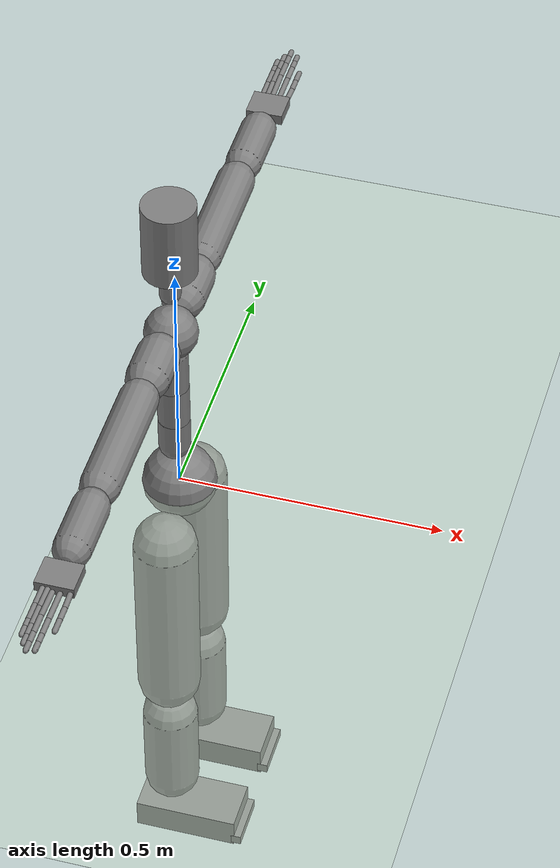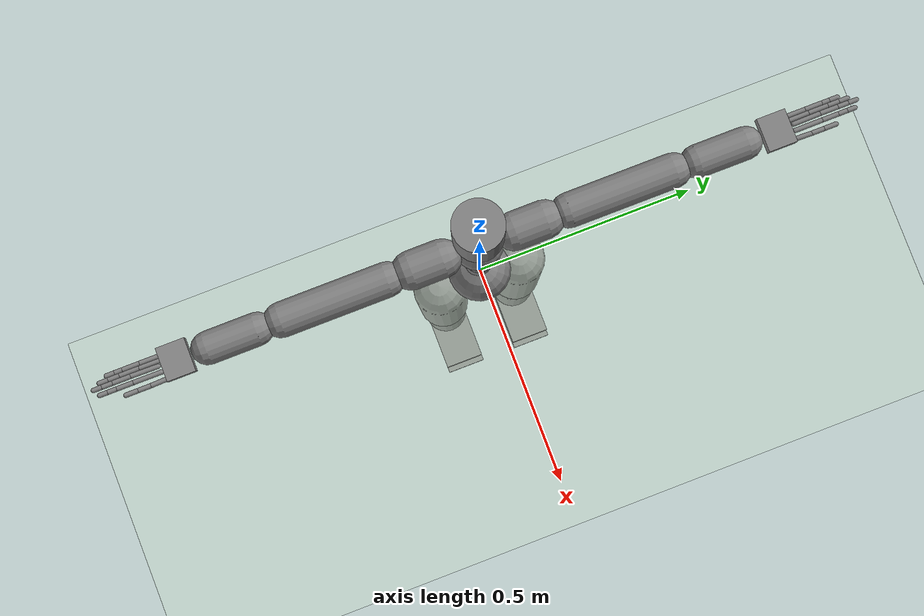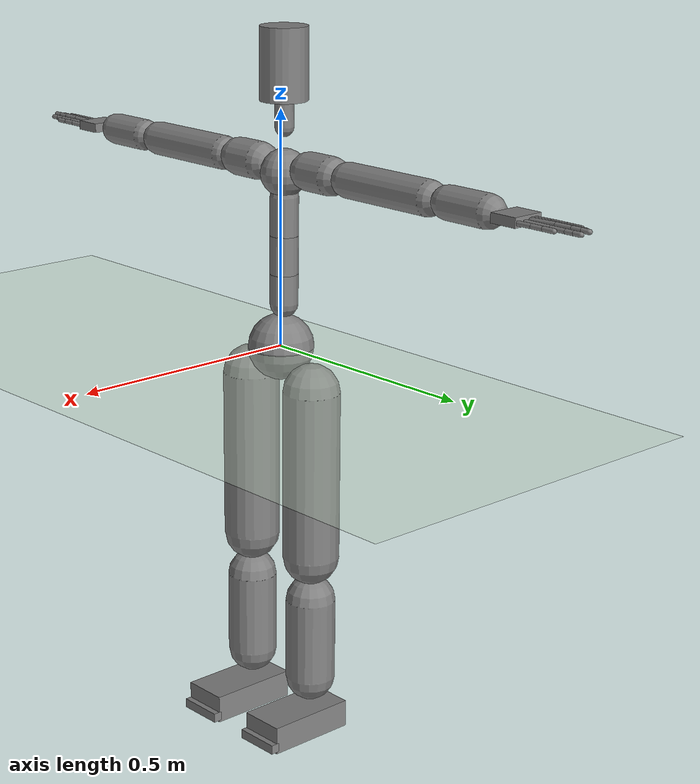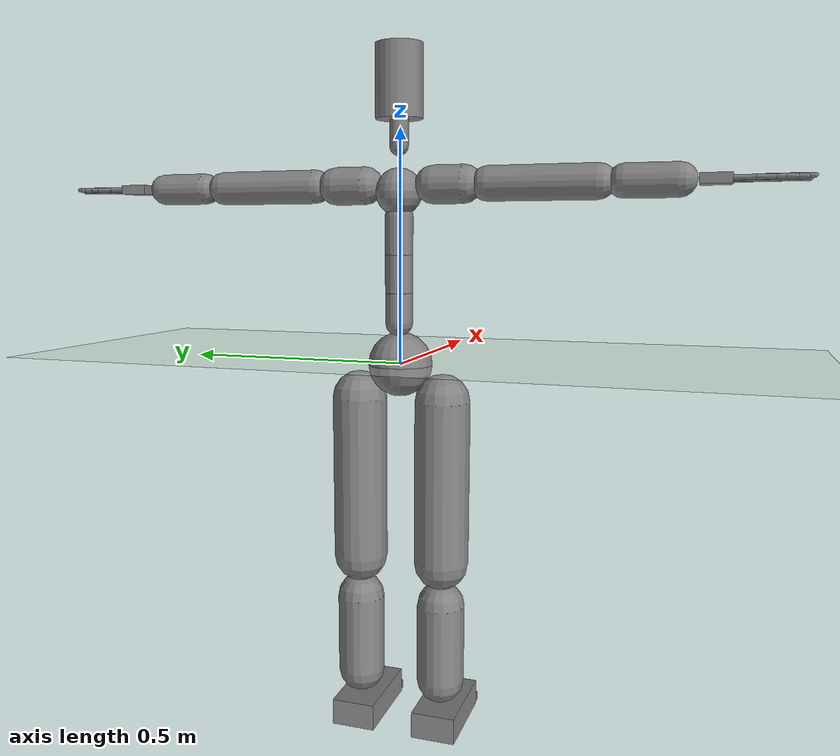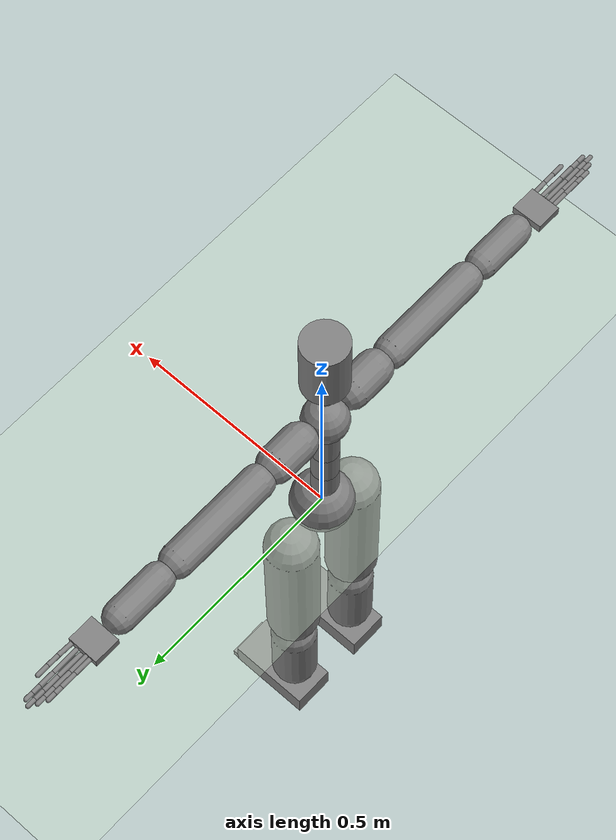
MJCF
<!-- change the damping from 50 to 500 -->
<mujoco model="humanoid">
  <compiler coordinate="local"/>
  <statistic extent="2" center="0 0 1"/>
  <option timestep="0.00555"/>
  <default>
    <motor ctrlrange="-1 1" ctrllimited="true"/>
    <geom type="capsule" condim="1" friction="1.0 0.05 0.05" solimp=".9 .99 .003" solref=".015 1"/>
    <joint type="hinge" damping="0.1" stiffness="5" armature=".007" limited="true" solimplimit="0 .99 .01"/>
    <site size=".04" group="3"/>
    <default class="force-torque">
      <site type="box" size=".01 .01 .02" rgba="1 0 0 1"/>
    </default>
    <default class="touch">
      <site type="capsule" rgba="0 0 1 .3"/>
    </default>
  </default>
  <asset>
    <texture type="skybox" builtin="gradient" rgb1=".4 .5 .6" rgb2="0 0 0" width="100" height="100"/>
    <texture builtin="flat" height="1278" mark="cross" markrgb="1 1 1" name="texgeom" random="0.01" rgb1="0.8 0.6 0.4" rgb2="0.8 0.6 0.4" type="cube" width="127"/>
    <texture builtin="checker" height="100" name="texplane" rgb1="0 0 0" rgb2="0.8 0.8 0.8" type="2d" width="100"/>
    <material name="MatPlane" reflectance="0.5" shininess="1" specular="1" texrepeat="60 60" texture="texplane"/>
    <material name="geom" texture="texgeom" texuniform="true"/>
  </asset>
  <worldbody>
    <light cutoff="100" diffuse="1 1 1" dir="-0 0 -1.3" directional="true" exponent="1" pos="0 0 1.3" specular=".1 .1 .1"/>
    <geom conaffinity="1" condim="3" name="floor" pos="0 0 0" rgba="0.8 0.9 0.8 1" size="100 100 .2" type="plane" material="MatPlane"/>
    <body name="pHipOrigin" pos="0 0 0">
      <freejoint name="pHipOrigin"/>
      <geom type="sphere" contype="1" conaffinity="1" density="4629.6296296296305" size="0.07011" pos="0.0000 0.0000 -0.0000"/>
      <body name="jL5S1" pos="-0.007946679926931962 0.0 0.07151991768832222">
        <geom type="capsule" contype="1" conaffinity="1" density="1000" fromto="0 0 0.02 0.0 0.0 0.08350356668233871" size="0.03"/>
        <joint name="jL5S1_x" type="hinge" pos="0 0 0" axis="1 0 0" stiffness="500" damping="500" armature="0.02" range="-180.0000 180.0000"/>
        <joint name="jL5S1_y" type="hinge" pos="0 0 0" axis="0 1 0" stiffness="500" damping="500" armature="0.02" range="-180.0000 180.0000"/>
        <joint name="jL5S1_z" type="hinge" pos="0 0 0" axis="0 0 1" stiffness="500" damping="500" armature="0.02" range="-180.0000 180.0000"/>
        <body name="jL4L3" pos="0.0 0.0 0.08350356668233871">
          <geom type="capsule" contype="1" conaffinity="1" density="1000" fromto="0 0 0 -0.0006272677302104607 0.0 0.08130501807604487" size="0.03"/>
          <joint name="jL4L3_x" type="hinge" pos="0 0 0" axis="1 0 0" stiffness="500" damping="500" armature="0.02" range="-180.0000 180.0000"/>
          <joint name="jL4L3_y" type="hinge" pos="0 0 0" axis="0 1 0" stiffness="500" damping="500" armature="0.02" range="-180.0000 180.0000"/>
          <joint name="jL4L3_z" type="hinge" pos="0 0 0" axis="0 0 1" stiffness="500" damping="500" armature="0.02" range="-180.0000 180.0000"/>
          <body name="jL1T12" pos="-0.0006272677302104607 0.0 0.08130501807604487">
            <geom type="capsule" contype="1" conaffinity="1" density="1000" fromto="0 0 0 -0.0006276752734201545 0.0 0.08119969634004" size="0.03"/>
            <joint name="jL1T12_x" type="hinge" pos="0 0 0" axis="1 0 0" stiffness="500" damping="500" armature="0.02" range="-180.0000 180.0000"/>
            <joint name="jL1T12_y" type="hinge" pos="0 0 0" axis="0 1 0" stiffness="500" damping="500" armature="0.02" range="-180.0000 180.0000"/>
            <joint name="jL1T12_z" type="hinge" pos="0 0 0" axis="0 0 1" stiffness="500" damping="500" armature="0.02" range="-180.0000 180.0000"/>
            <body name="jT9T8" pos="-0.0006276752734201545 0.0 0.08119969634004">
              <geom type="sphere" contype="1" conaffinity="1" density="1000" size="0.05011" pos="0.0000 0.0000 0.050000"/>
              <joint name="jT9T8_x" type="hinge" pos="0 0 0" axis="1 0 0" stiffness="500" damping="500" armature="0.02" range="-180.0000 180.0000"/>
              <joint name="jT9T8_y" type="hinge" pos="0 0 0" axis="0 1 0" stiffness="500" damping="500" armature="0.02" range="-180.0000 180.0000"/>
              <joint name="jT9T8_z" type="hinge" pos="0 0 0" axis="0 0 1" stiffness="500" damping="500" armature="0.02" range="-180.0000 180.0000"/>
              <body name="jT1C7" pos="0.0 0.0 0.11338400840759277">
                <geom type="capsule" contype="1" conaffinity="1" density="1000" fromto="0 0 0.03 0.0009963847454485726 0.0 0.08445642374205747" size="0.02"/>
                <joint name="jT1C7_x" type="hinge" pos="0 0 0" axis="1 0 0" stiffness="500" damping="500" armature="0.02" range="-180.0000 180.0000"/>
                <joint name="jT1C7_y" type="hinge" pos="0 0 0" axis="0 1 0" stiffness="500" damping="500" armature="0.02" range="-180.0000 180.0000"/>
                <joint name="jT1C7_z" type="hinge" pos="0 0 0" axis="0 0 1" stiffness="500" damping="500" armature="0.02" range="-180.0000 180.0000"/>
                <body name="jC1Head" pos="0.0009963847454485726 0.0 0.08445642374205747">
                  <geom type="cylinder" contype="1" conaffinity="1" density="1000" fromto="0 0 0 0 0 0.15" size="0.05"/>
                  <joint name="jC1Head_x" type="hinge" pos="0 0 0" axis="1 0 0" stiffness="500" damping="500" armature="0.02" range="-180.0000 180.0000"/>
                  <joint name="jC1Head_y" type="hinge" pos="0 0 0" axis="0 1 0" stiffness="500" damping="500" armature="0.02" range="-180.0000 180.0000"/>
                  <joint name="jC1Head_z" type="hinge" pos="0 0 0" axis="0 0 1" stiffness="500" damping="500" armature="0.02" range="-180.0000 180.0000"/>
                </body>
              </body>
              <body name="jRightT4Shoulder" pos="0.0 -0.026105117709178827 0.06365000658535032">
                <geom type="capsule" contype="1" conaffinity="1" density="1000" fromto="0 -0.05 0 0.0 -0.11530210077762604 0.0" size="0.04"/>
                <joint name="jRightT4Shoulder_x" type="hinge" pos="0 0 0" axis="1 0 0" stiffness="500" damping="500" armature="0.02" range="-180.0000 180.0000"/>
                <joint name="jRightT4Shoulder_y" type="hinge" pos="0 0 0" axis="0 1 0" stiffness="500" damping="500" armature="0.02" range="-180.0000 180.0000"/>
                <joint name="jRightT4Shoulder_z" type="hinge" pos="0 0 0" axis="0 0 1" stiffness="500" damping="500" armature="0.02" range="-180.0000 180.0000"/>
                <body name="jRightShoulder" pos="0.0 -0.11530210077762604 0.0">
                  <geom type="capsule" contype="1" conaffinity="1" density="1000" fromto="0 -0.05 0 0.0 -0.27284160256385803 0.0" size="0.036"/>
                  <joint name="jRightShoulder_x" type="hinge" pos="0 0 0" axis="1 0 0" stiffness="500" damping="500" armature="0.02" range="-180.0000 180.0000"/>
                  <joint name="jRightShoulder_y" type="hinge" pos="0 0 0" axis="0 1 0" stiffness="500" damping="500" armature="0.02" range="-180.0000 180.0000"/>
                  <joint name="jRightShoulder_z" type="hinge" pos="0 0 0" axis="0 0 1" stiffness="500" damping="500" armature="0.02" range="-180.0000 180.0000"/>
                  <body name="jRightElbow" pos="0.0 -0.27284160256385803 0.0">
                    <geom type="capsule" contype="1" conaffinity="1" density="1000" fromto="0 -0.05 0 8.829771379146751e-05 -0.1533837697134147 0.0" size="0.034"/>
                    <joint name="jRightElbow_x" type="hinge" pos="0 0 0" axis="1 0 0" stiffness="500" damping="500" armature="0.02" range="-180.0000 180.0000"/>
                    <joint name="jRightElbow_y" type="hinge" pos="0 0 0" axis="0 1 0" stiffness="500" damping="500" armature="0.02" range="-180.0000 180.0000"/>
                    <joint name="jRightElbow_z" type="hinge" pos="0 0 0" axis="0 0 1" stiffness="500" damping="500" armature="0.02" range="-180.0000 180.0000"/>
                    <body name="jRightWrist" pos="8.829771379146751e-05 -0.2193837697134147 0.0">
                      <geom density="1000" type="box" pos="0 0 0" size="0.035 0.03 0.01" quat="1.0 0 0 0"/>
                      <joint name="jRightWrist_x" type="hinge" pos="0 0 0" axis="1 0 0" stiffness="500" damping="500" armature="0.02" range="-180.0000 180.0000"/>
                      <joint name="jRightWrist_y" type="hinge" pos="0 0 0" axis="0 1 0" stiffness="500" damping="500" armature="0.02" range="-180.0000 180.0000"/>
                      <joint name="jRightWrist_z" type="hinge" pos="0 0 0" axis="0 0 1" stiffness="500" damping="500" armature="0.02" range="-180.0000 180.0000"/>
                      <body name="jRightFirstCMC" pos="0.028494645 -0.027313715 -0.0012904119">
                        <geom type="capsule" contype="1" conaffinity="1" density="1000" fromto="0 0 0 0.0012845712481066585 -0.03624974936246872 0.0007659548427909613" size="0.005"/>
                        <joint name="jRightFirstCMC_x" type="hinge" pos="0 0 0" axis="1 0 0" stiffness="500" damping="500" armature="0.02" range="-180.0000 180.0000"/>
                        <joint name="jRightFirstCMC_y" type="hinge" pos="0 0 0" axis="0 1 0" stiffness="500" damping="500" armature="0.02" range="-180.0000 180.0000"/>
                        <joint name="jRightFirstCMC_z" type="hinge" pos="0 0 0" axis="0 0 1" stiffness="500" damping="500" armature="0.02" range="-180.0000 180.0000"/>
                        <body name="jRightFirstMCP" pos="0.0012845712 -0.03624975 0.00076595484">
                          <geom type="capsule" contype="1" conaffinity="1" density="1000" fromto="0 0 0 0.0 -0.026645751670002937 0.0" size="0.005"/>
                          <joint name="jRightFirstMCP_x" type="hinge" pos="0 0 0" axis="1 0 0" stiffness="500" damping="500" armature="0.02" range="-180.0000 180.0000"/>
                          <joint name="jRightFirstMCP_y" type="hinge" pos="0 0 0" axis="0 1 0" stiffness="500" damping="500" armature="0.02" range="-180.0000 180.0000"/>
                          <joint name="jRightFirstMCP_z" type="hinge" pos="0 0 0" axis="0 0 1" stiffness="500" damping="500" armature="0.02" range="-180.0000 180.0000"/>
                          <body name="jRightIP" pos="0.0 -0.026645752 0.0">
                            <geom type="capsule" contype="1" conaffinity="1" density="1000" fromto="0 0 0 0.0 -0.02589792013168335 0.0" size="0.005"/>
                            <joint name="jRightIP_x" type="hinge" pos="0 0 0" axis="1 0 0" stiffness="500" damping="500" armature="0.02" range="-180.0000 180.0000"/>
                            <joint name="jRightIP_y" type="hinge" pos="0 0 0" axis="0 1 0" stiffness="500" damping="500" armature="0.02" range="-180.0000 180.0000"/>
                            <joint name="jRightIP_z" type="hinge" pos="0 0 0" axis="0 0 1" stiffness="500" damping="500" armature="0.02" range="-180.0000 180.0000"/>
                          </body>
                        </body>
                      </body>
                      <body name="jRightSecondCMC" pos="0.012061166 -0.035238907 -0.0006146521">
                        <geom type="capsule" contype="1" conaffinity="1" density="1000" fromto="0 0 0 -0.0003678314096760005 -0.058666352182626724 -0.0006085645291022956" size="0.005"/>
                        <joint name="jRightSecondCMC_x" type="hinge" pos="0 0 0" axis="1 0 0" stiffness="500" damping="500" armature="0.02" range="-180.0000 180.0000"/>
                        <joint name="jRightSecondCMC_y" type="hinge" pos="0 0 0" axis="0 1 0" stiffness="500" damping="500" armature="0.02" range="-180.0000 180.0000"/>
                        <joint name="jRightSecondCMC_z" type="hinge" pos="0 0 0" axis="0 0 1" stiffness="500" damping="500" armature="0.02" range="-180.0000 180.0000"/>
                        <body name="jRightSecondMCP" pos="-0.0003678314 -0.058666352 -0.0006085645">
                          <geom type="capsule" contype="1" conaffinity="1" density="1000" fromto="0 0 0 0.0 -0.034541621804237366 0.0" size="0.005"/>
                          <joint name="jRightSecondMCP_x" type="hinge" pos="0 0 0" axis="1 0 0" stiffness="500" damping="500" armature="0.02" range="-180.0000 180.0000"/>
                          <joint name="jRightSecondMCP_y" type="hinge" pos="0 0 0" axis="0 1 0" stiffness="500" damping="500" armature="0.02" range="-180.0000 180.0000"/>
                          <joint name="jRightSecondMCP_z" type="hinge" pos="0 0 0" axis="0 0 1" stiffness="500" damping="500" armature="0.02" range="-180.0000 180.0000"/>
                          <body name="jRightSecondPIP" pos="0.0 -0.03454162 0.0">
                            <geom type="capsule" contype="1" conaffinity="1" density="1000" fromto="0 0 0 0.0 -0.018828708678483963 0.0" size="0.005"/>
                            <joint name="jRightSecondPIP_x" type="hinge" pos="0 0 0" axis="1 0 0" stiffness="500" damping="500" armature="0.02" range="-180.0000 180.0000"/>
                            <joint name="jRightSecondPIP_y" type="hinge" pos="0 0 0" axis="0 1 0" stiffness="500" damping="500" armature="0.02" range="-180.0000 180.0000"/>
                            <joint name="jRightSecondPIP_z" type="hinge" pos="0 0 0" axis="0 0 1" stiffness="500" damping="500" armature="0.02" range="-180.0000 180.0000"/>
                            <body name="jRightSecondDIP" pos="0.0 -0.018828709 0.0">
                              <geom type="capsule" contype="1" conaffinity="1" density="1000" fromto="0 0 0 0.0 -0.01691189408302307 0.0" size="0.005"/>
                              <joint name="jRightSecondDIP_x" type="hinge" pos="0 0 0" axis="1 0 0" stiffness="500" damping="500" armature="0.02" range="-180.0000 180.0000"/>
                              <joint name="jRightSecondDIP_y" type="hinge" pos="0 0 0" axis="0 1 0" stiffness="500" damping="500" armature="0.02" range="-180.0000 180.0000"/>
                              <joint name="jRightSecondDIP_z" type="hinge" pos="0 0 0" axis="0 0 1" stiffness="500" damping="500" armature="0.02" range="-180.0000 180.0000"/>
                            </body>
                          </body>
                        </body>
                      </body>
                      <body name="jRightThirdCMC" pos="-0.0006841017 -0.03699464 0.0015553109">
                        <geom type="capsule" contype="1" conaffinity="1" density="1000" fromto="0 0 0 -0.0006854247185401618 -0.05678754299879074 0.0015449706697836518" size="0.005"/>
                        <joint name="jRightThirdCMC_x" type="hinge" pos="0 0 0" axis="1 0 0" stiffness="500" damping="500" armature="0.02" range="-180.0000 180.0000"/>
                        <joint name="jRightThirdCMC_y" type="hinge" pos="0 0 0" axis="0 1 0" stiffness="500" damping="500" armature="0.02" range="-180.0000 180.0000"/>
                        <joint name="jRightThirdCMC_z" type="hinge" pos="0 0 0" axis="0 0 1" stiffness="500" damping="500" armature="0.02" range="-180.0000 180.0000"/>
                        <body name="jRightThirdMCP" pos="-0.0006854247 -0.056787543 0.0015449707">
                          <geom type="capsule" contype="1" conaffinity="1" density="1000" fromto="0 0 0 0.0 -0.037671543657779694 0.0" size="0.005"/>
                          <joint name="jRightThirdMCP_x" type="hinge" pos="0 0 0" axis="1 0 0" stiffness="500" damping="500" armature="0.02" range="-180.0000 180.0000"/>
                          <joint name="jRightThirdMCP_y" type="hinge" pos="0 0 0" axis="0 1 0" stiffness="500" damping="500" armature="0.02" range="-180.0000 180.0000"/>
                          <joint name="jRightThirdMCP_z" type="hinge" pos="0 0 0" axis="0 0 1" stiffness="500" damping="500" armature="0.02" range="-180.0000 180.0000"/>
                          <body name="jRightThirdPIP" pos="0.0 -0.037671544 0.0">
                            <geom type="capsule" contype="1" conaffinity="1" density="1000" fromto="0 0 0 0.0 -0.02229711413383484 0.0" size="0.005"/>
                            <joint name="jRightThirdPIP_x" type="hinge" pos="0 0 0" axis="1 0 0" stiffness="500" damping="500" armature="0.02" range="-180.0000 180.0000"/>
                            <joint name="jRightThirdPIP_y" type="hinge" pos="0 0 0" axis="0 1 0" stiffness="500" damping="500" armature="0.02" range="-180.0000 180.0000"/>
                            <joint name="jRightThirdPIP_z" type="hinge" pos="0 0 0" axis="0 0 1" stiffness="500" damping="500" armature="0.02" range="-180.0000 180.0000"/>
                            <body name="jRightThirdDIP" pos="0.0 -0.022297114 0.0">
                              <geom type="capsule" contype="1" conaffinity="1" density="1000" fromto="0 0 0 0.0 -0.017722949385643005 0.0" size="0.005"/>
                              <joint name="jRightThirdDIP_x" type="hinge" pos="0 0 0" axis="1 0 0" stiffness="500" damping="500" armature="0.02" range="-180.0000 180.0000"/>
                              <joint name="jRightThirdDIP_y" type="hinge" pos="0 0 0" axis="0 1 0" stiffness="500" damping="500" armature="0.02" range="-180.0000 180.0000"/>
                              <joint name="jRightThirdDIP_z" type="hinge" pos="0 0 0" axis="0 0 1" stiffness="500" damping="500" armature="0.02" range="-180.0000 180.0000"/>
                            </body>
                          </body>
                        </body>
                      </body>
                      <body name="jRightFourthCMC" pos="-0.010228618 -0.028488394 0.00067057216">
                        <geom type="capsule" contype="1" conaffinity="1" density="1000" fromto="0 0 0 -0.0003271172463428229 -0.04483460634946823 0.0007043872610665858" size="0.005"/>
                        <joint name="jRightFourthCMC_x" type="hinge" pos="0 0 0" axis="1 0 0" stiffness="500" damping="500" armature="0.02" range="-180.0000 180.0000"/>
                        <joint name="jRightFourthCMC_y" type="hinge" pos="0 0 0" axis="0 1 0" stiffness="500" damping="500" armature="0.02" range="-180.0000 180.0000"/>
                        <joint name="jRightFourthCMC_z" type="hinge" pos="0 0 0" axis="0 0 1" stiffness="500" damping="500" armature="0.02" range="-180.0000 180.0000"/>
                        <body name="jRightFourthMCP" pos="-0.00032711725 -0.044834606 0.00070438726">
                          <geom type="capsule" contype="1" conaffinity="1" density="1000" fromto="0 0 0 0.0 -0.04097643494606018 0.0" size="0.005"/>
                          <joint name="jRightFourthMCP_x" type="hinge" pos="0 0 0" axis="1 0 0" stiffness="500" damping="500" armature="0.02" range="-180.0000 180.0000"/>
                          <joint name="jRightFourthMCP_y" type="hinge" pos="0 0 0" axis="0 1 0" stiffness="500" damping="500" armature="0.02" range="-180.0000 180.0000"/>
                          <joint name="jRightFourthMCP_z" type="hinge" pos="0 0 0" axis="0 0 1" stiffness="500" damping="500" armature="0.02" range="-180.0000 180.0000"/>
                          <body name="jRightFourthPIP" pos="0.0 -0.040976435 0.0">
                            <geom type="capsule" contype="1" conaffinity="1" density="1000" fromto="0 0 0 0.0 -0.02371319942176342 0.0" size="0.005"/>
                            <joint name="jRightFourthPIP_x" type="hinge" pos="0 0 0" axis="1 0 0" stiffness="500" damping="500" armature="0.02" range="-180.0000 180.0000"/>
                            <joint name="jRightFourthPIP_y" type="hinge" pos="0 0 0" axis="0 1 0" stiffness="500" damping="500" armature="0.02" range="-180.0000 180.0000"/>
                            <joint name="jRightFourthPIP_z" type="hinge" pos="0 0 0" axis="0 0 1" stiffness="500" damping="500" armature="0.02" range="-180.0000 180.0000"/>
                            <body name="jRightFourthDIP" pos="0.0 -0.0237132 0.0">
                              <geom type="capsule" contype="1" conaffinity="1" density="1000" fromto="0 0 0 0.0 -0.01847192645072937 0.0" size="0.005"/>
                              <joint name="jRightFourthDIP_x" type="hinge" pos="0 0 0" axis="1 0 0" stiffness="500" damping="500" armature="0.02" range="-180.0000 180.0000"/>
                              <joint name="jRightFourthDIP_y" type="hinge" pos="0 0 0" axis="0 1 0" stiffness="500" damping="500" armature="0.02" range="-180.0000 180.0000"/>
                              <joint name="jRightFourthDIP_z" type="hinge" pos="0 0 0" axis="0 0 1" stiffness="500" damping="500" armature="0.02" range="-180.0000 180.0000"/>
                            </body>
                          </body>
                        </body>
                      </body>
                      <body name="jRightFifthCMC" pos="-0.019280266 -0.026864853 0.00052995724">
                        <geom type="capsule" contype="1" conaffinity="1" density="1000" fromto="0 0 0 -6.2936787799117155e-06 -0.04261023923754692 0.0005863698897883296" size="0.005"/>
                        <joint name="jRightFifthCMC_x" type="hinge" pos="0 0 0" axis="1 0 0" stiffness="500" damping="500" armature="0.02" range="-180.0000 180.0000"/>
                        <joint name="jRightFifthCMC_y" type="hinge" pos="0 0 0" axis="0 1 0" stiffness="500" damping="500" armature="0.02" range="-180.0000 180.0000"/>
                        <joint name="jRightFifthCMC_z" type="hinge" pos="0 0 0" axis="0 0 1" stiffness="500" damping="500" armature="0.02" range="-180.0000 180.0000"/>
                        <body name="jRightFifthMCP" pos="-6.293679e-06 -0.04261024 0.0005863699">
                          <geom type="capsule" contype="1" conaffinity="1" density="1000" fromto="0 0 0 0.0 -0.03570812568068504 0.0" size="0.005"/>
                          <joint name="jRightFifthMCP_x" type="hinge" pos="0 0 0" axis="1 0 0" stiffness="500" damping="500" armature="0.02" range="-180.0000 180.0000"/>
                          <joint name="jRightFifthMCP_y" type="hinge" pos="0 0 0" axis="0 1 0" stiffness="500" damping="500" armature="0.02" range="-180.0000 180.0000"/>
                          <joint name="jRightFifthMCP_z" type="hinge" pos="0 0 0" axis="0 0 1" stiffness="500" damping="500" armature="0.02" range="-180.0000 180.0000"/>
                          <body name="jRightFifthPIP" pos="0.0 -0.035708126 0.0">
                            <geom type="capsule" contype="1" conaffinity="1" density="1000" fromto="0 0 0 0.0 -0.016232147812843323 0.0" size="0.005"/>
                            <joint name="jRightFifthPIP_x" type="hinge" pos="0 0 0" axis="1 0 0" stiffness="500" damping="500" armature="0.02" range="-180.0000 180.0000"/>
                            <joint name="jRightFifthPIP_y" type="hinge" pos="0 0 0" axis="0 1 0" stiffness="500" damping="500" armature="0.02" range="-180.0000 180.0000"/>
                            <joint name="jRightFifthPIP_z" type="hinge" pos="0 0 0" axis="0 0 1" stiffness="500" damping="500" armature="0.02" range="-180.0000 180.0000"/>
                            <body name="jRightFifthDIP" pos="0.0 -0.016232148 0.0">
                              <geom type="capsule" contype="1" conaffinity="1" density="1000" fromto="0 0 0 0.0 -0.01722918450832367 0.0" size="0.005"/>
                              <joint name="jRightFifthDIP_x" type="hinge" pos="0 0 0" axis="1 0 0" stiffness="500" damping="500" armature="0.02" range="-180.0000 180.0000"/>
                              <joint name="jRightFifthDIP_y" type="hinge" pos="0 0 0" axis="0 1 0" stiffness="500" damping="500" armature="0.02" range="-180.0000 180.0000"/>
                              <joint name="jRightFifthDIP_z" type="hinge" pos="0 0 0" axis="0 0 1" stiffness="500" damping="500" armature="0.02" range="-180.0000 180.0000"/>
                            </body>
                          </body>
                        </body>
                      </body>
                    </body>
                  </body>
                </body>
              </body>
              <body name="jLeftT4Shoulder" pos="0.0 0.02615714474610714 0.06377685992039347">
                <geom type="capsule" contype="1" conaffinity="1" density="1000" fromto="0 0.05 0 0.0 0.11537502706050873 0.0" size="0.04"/>
                <joint name="jLeftT4Shoulder_x" type="hinge" pos="0 0 0" axis="1 0 0" stiffness="500" damping="500" armature="0.02" range="-180.0000 180.0000"/>
                <joint name="jLeftT4Shoulder_y" type="hinge" pos="0 0 0" axis="0 1 0" stiffness="500" damping="500" armature="0.02" range="-180.0000 180.0000"/>
                <joint name="jLeftT4Shoulder_z" type="hinge" pos="0 0 0" axis="0 0 1" stiffness="500" damping="500" armature="0.02" range="-180.0000 180.0000"/>
                <body name="jLeftShoulder" pos="0.0 0.11537502706050873 0.0">
                  <geom type="capsule" contype="1" conaffinity="1" density="1000" fromto="0 0.05 0 0.0 0.27263200283050537 0.0" size="0.036"/>
                  <joint name="jLeftShoulder_x" type="hinge" pos="0 0 0" axis="1 0 0" stiffness="500" damping="500" armature="0.02" range="-180.0000 180.0000"/>
                  <joint name="jLeftShoulder_y" type="hinge" pos="0 0 0" axis="0 1 0" stiffness="500" damping="500" armature="0.02" range="-180.0000 180.0000"/>
                  <joint name="jLeftShoulder_z" type="hinge" pos="0 0 0" axis="0 0 1" stiffness="500" damping="500" armature="0.02" range="-180.0000 180.0000"/>
                  <body name="jLeftElbow" pos="0.0 0.27263200283050537 0.0">
                    <geom type="capsule" contype="1" conaffinity="1" density="1000" fromto="0 0.05 0 8.814794002488854e-05 0.15301164305117887 0.0" size="0.034"/>
                    <joint name="jLeftElbow_x" type="hinge" pos="0 0 0" axis="1 0 0" stiffness="500" damping="500" armature="0.02" range="-180.0000 180.0000"/>
                    <joint name="jLeftElbow_y" type="hinge" pos="0 0 0" axis="0 1 0" stiffness="500" damping="500" armature="0.02" range="-180.0000 180.0000"/>
                    <joint name="jLeftElbow_z" type="hinge" pos="0 0 0" axis="0 0 1" stiffness="500" damping="500" armature="0.02" range="-180.0000 180.0000"/>
                    <body name="jLeftWrist" pos="8.814794002488854e-05 0.21901164305117887 0.0">
                      <geom density="1000" type="box" pos="0 0 0" size="0.035 0.03 0.01" quat="1.0 0 0 0"/>
                      <joint name="jLeftWrist_x" type="hinge" pos="0 0 0" axis="1 0 0" stiffness="500" damping="500" armature="0.02" range="-180.0000 180.0000"/>
                      <joint name="jLeftWrist_y" type="hinge" pos="0 0 0" axis="0 1 0" stiffness="500" damping="500" armature="0.02" range="-180.0000 180.0000"/>
                      <joint name="jLeftWrist_z" type="hinge" pos="0 0 0" axis="0 0 1" stiffness="500" damping="500" armature="0.02" range="-180.0000 180.0000"/>
                      <body name="jLeftFirstCMC" pos="0.027889546 0.02795541 -0.0012482442">
                        <geom type="capsule" contype="1" conaffinity="1" density="1000" fromto="0 0 0 0.001272197114303708 0.036248933523893356 0.0007464524824172258" size="0.005"/>
                        <joint name="jLeftFirstCMC_x" type="hinge" pos="0 0 0" axis="1 0 0" stiffness="500" damping="500" armature="0.02" range="-180.0000 180.0000"/>
                        <joint name="jLeftFirstCMC_y" type="hinge" pos="0 0 0" axis="0 1 0" stiffness="500" damping="500" armature="0.02" range="-180.0000 180.0000"/>
                        <joint name="jLeftFirstCMC_z" type="hinge" pos="0 0 0" axis="0 0 1" stiffness="500" damping="500" armature="0.02" range="-180.0000 180.0000"/>
                        <body name="jLeftFirstMCP" pos="0.0012721971 0.036248934 0.0007464525">
                          <geom type="capsule" contype="1" conaffinity="1" density="1000" fromto="0 0 0 0.0 0.026645751670002937 0.0" size="0.005"/>
                          <joint name="jLeftFirstMCP_x" type="hinge" pos="0 0 0" axis="1 0 0" stiffness="500" damping="500" armature="0.02" range="-180.0000 180.0000"/>
                          <joint name="jLeftFirstMCP_y" type="hinge" pos="0 0 0" axis="0 1 0" stiffness="500" damping="500" armature="0.02" range="-180.0000 180.0000"/>
                          <joint name="jLeftFirstMCP_z" type="hinge" pos="0 0 0" axis="0 0 1" stiffness="500" damping="500" armature="0.02" range="-180.0000 180.0000"/>
                          <body name="jLeftIP" pos="0.0 0.026645752 0.0">
                            <geom type="capsule" contype="1" conaffinity="1" density="1000" fromto="0 0 0 0.0 0.02589792013168335 0.0" size="0.005"/>
                            <joint name="jLeftIP_x" type="hinge" pos="0 0 0" axis="1 0 0" stiffness="500" damping="500" armature="0.02" range="-180.0000 180.0000"/>
                            <joint name="jLeftIP_y" type="hinge" pos="0 0 0" axis="0 1 0" stiffness="500" damping="500" armature="0.02" range="-180.0000 180.0000"/>
                            <joint name="jLeftIP_z" type="hinge" pos="0 0 0" axis="0 0 1" stiffness="500" damping="500" armature="0.02" range="-180.0000 180.0000"/>
                          </body>
                        </body>
                      </body>
                      <body name="jLeftSecondCMC" pos="0.012200089 0.035174068 -0.0006197278">
                        <geom type="capsule" contype="1" conaffinity="1" density="1000" fromto="0 0 0 -0.00032072464819066226 0.05866755545139313 -0.0006160823977552354" size="0.005"/>
                        <joint name="jLeftSecondCMC_x" type="hinge" pos="0 0 0" axis="1 0 0" stiffness="500" damping="500" armature="0.02" range="-180.0000 180.0000"/>
                        <joint name="jLeftSecondCMC_y" type="hinge" pos="0 0 0" axis="0 1 0" stiffness="500" damping="500" armature="0.02" range="-180.0000 180.0000"/>
                        <joint name="jLeftSecondCMC_z" type="hinge" pos="0 0 0" axis="0 0 1" stiffness="500" damping="500" armature="0.02" range="-180.0000 180.0000"/>
                        <body name="jLeftSecondMCP" pos="-0.00032072465 0.058667555 -0.0006160824">
                          <geom type="capsule" contype="1" conaffinity="1" density="1000" fromto="0 0 0 0.0 0.034541621804237366 0.0" size="0.005"/>
                          <joint name="jLeftSecondMCP_x" type="hinge" pos="0 0 0" axis="1 0 0" stiffness="500" damping="500" armature="0.02" range="-180.0000 180.0000"/>
                          <joint name="jLeftSecondMCP_y" type="hinge" pos="0 0 0" axis="0 1 0" stiffness="500" damping="500" armature="0.02" range="-180.0000 180.0000"/>
                          <joint name="jLeftSecondMCP_z" type="hinge" pos="0 0 0" axis="0 0 1" stiffness="500" damping="500" armature="0.02" range="-180.0000 180.0000"/>
                          <body name="jLeftSecondPIP" pos="0.0 0.03454162 0.0">
                            <geom type="capsule" contype="1" conaffinity="1" density="1000" fromto="0 0 0 0.0 0.018828708678483963 0.0" size="0.005"/>
                            <joint name="jLeftSecondPIP_x" type="hinge" pos="0 0 0" axis="1 0 0" stiffness="500" damping="500" armature="0.02" range="-180.0000 180.0000"/>
                            <joint name="jLeftSecondPIP_y" type="hinge" pos="0 0 0" axis="0 1 0" stiffness="500" damping="500" armature="0.02" range="-180.0000 180.0000"/>
                            <joint name="jLeftSecondPIP_z" type="hinge" pos="0 0 0" axis="0 0 1" stiffness="500" damping="500" armature="0.02" range="-180.0000 180.0000"/>
                            <body name="jLeftSecondDIP" pos="0.0 0.018828709 0.0">
                              <geom type="capsule" contype="1" conaffinity="1" density="1000" fromto="0 0 0 0.0 0.01691189408302307 0.0" size="0.005"/>
                              <joint name="jLeftSecondDIP_x" type="hinge" pos="0 0 0" axis="1 0 0" stiffness="500" damping="500" armature="0.02" range="-180.0000 180.0000"/>
                              <joint name="jLeftSecondDIP_y" type="hinge" pos="0 0 0" axis="0 1 0" stiffness="500" damping="500" armature="0.02" range="-180.0000 180.0000"/>
                              <joint name="jLeftSecondDIP_z" type="hinge" pos="0 0 0" axis="0 0 1" stiffness="500" damping="500" armature="0.02" range="-180.0000 180.0000"/>
                            </body>
                          </body>
                        </body>
                      </body>
                      <body name="jLeftThirdCMC" pos="-0.0006881179 0.036997963 0.0015034667">
                        <geom type="capsule" contype="1" conaffinity="1" density="1000" fromto="0 0 0 -0.0006909571820870042 0.056788645684719086 0.0015139109455049038" size="0.005"/>
                        <joint name="jLeftThirdCMC_x" type="hinge" pos="0 0 0" axis="1 0 0" stiffness="500" damping="500" armature="0.02" range="-180.0000 180.0000"/>
                        <joint name="jLeftThirdCMC_y" type="hinge" pos="0 0 0" axis="0 1 0" stiffness="500" damping="500" armature="0.02" range="-180.0000 180.0000"/>
                        <joint name="jLeftThirdCMC_z" type="hinge" pos="0 0 0" axis="0 0 1" stiffness="500" damping="500" armature="0.02" range="-180.0000 180.0000"/>
                        <body name="jLeftThirdMCP" pos="-0.0006909572 0.056788646 0.001513911">
                          <geom type="capsule" contype="1" conaffinity="1" density="1000" fromto="0 0 0 0.0 0.037671543657779694 0.0" size="0.005"/>
                          <joint name="jLeftThirdMCP_x" type="hinge" pos="0 0 0" axis="1 0 0" stiffness="500" damping="500" armature="0.02" range="-180.0000 180.0000"/>
                          <joint name="jLeftThirdMCP_y" type="hinge" pos="0 0 0" axis="0 1 0" stiffness="500" damping="500" armature="0.02" range="-180.0000 180.0000"/>
                          <joint name="jLeftThirdMCP_z" type="hinge" pos="0 0 0" axis="0 0 1" stiffness="500" damping="500" armature="0.02" range="-180.0000 180.0000"/>
                          <body name="jLeftThirdPIP" pos="0.0 0.037671544 0.0">
                            <geom type="capsule" contype="1" conaffinity="1" density="1000" fromto="0 0 0 0.0 0.02229711413383484 0.0" size="0.005"/>
                            <joint name="jLeftThirdPIP_x" type="hinge" pos="0 0 0" axis="1 0 0" stiffness="500" damping="500" armature="0.02" range="-180.0000 180.0000"/>
                            <joint name="jLeftThirdPIP_y" type="hinge" pos="0 0 0" axis="0 1 0" stiffness="500" damping="500" armature="0.02" range="-180.0000 180.0000"/>
                            <joint name="jLeftThirdPIP_z" type="hinge" pos="0 0 0" axis="0 0 1" stiffness="500" damping="500" armature="0.02" range="-180.0000 180.0000"/>
                            <body name="jLeftThirdDIP" pos="0.0 0.022297114 0.0">
                              <geom type="capsule" contype="1" conaffinity="1" density="1000" fromto="0 0 0 0.0 0.017722949385643005 0.0" size="0.005"/>
                              <joint name="jLeftThirdDIP_x" type="hinge" pos="0 0 0" axis="1 0 0" stiffness="500" damping="500" armature="0.02" range="-180.0000 180.0000"/>
                              <joint name="jLeftThirdDIP_y" type="hinge" pos="0 0 0" axis="0 1 0" stiffness="500" damping="500" armature="0.02" range="-180.0000 180.0000"/>
                              <joint name="jLeftThirdDIP_z" type="hinge" pos="0 0 0" axis="0 0 1" stiffness="500" damping="500" armature="0.02" range="-180.0000 180.0000"/>
                            </body>
                          </body>
                        </body>
                      </body>
                      <body name="jLeftFourthCMC" pos="-0.010603941 0.028342672 0.0007158294">
                        <geom type="capsule" contype="1" conaffinity="1" density="1000" fromto="0 0 0 -0.0003517843142617494 0.04483203962445259 0.0007449705735780299" size="0.005"/>
                        <joint name="jLeftFourthCMC_x" type="hinge" pos="0 0 0" axis="1 0 0" stiffness="500" damping="500" armature="0.02" range="-180.0000 180.0000"/>
                        <joint name="jLeftFourthCMC_y" type="hinge" pos="0 0 0" axis="0 1 0" stiffness="500" damping="500" armature="0.02" range="-180.0000 180.0000"/>
                        <joint name="jLeftFourthCMC_z" type="hinge" pos="0 0 0" axis="0 0 1" stiffness="500" damping="500" armature="0.02" range="-180.0000 180.0000"/>
                        <body name="jLeftFourthMCP" pos="-0.0003517843 0.04483204 0.0007449706">
                          <geom type="capsule" contype="1" conaffinity="1" density="1000" fromto="0 0 0 0.0 0.04097643494606018 0.0" size="0.005"/>
                          <joint name="jLeftFourthMCP_x" type="hinge" pos="0 0 0" axis="1 0 0" stiffness="500" damping="500" armature="0.02" range="-180.0000 180.0000"/>
                          <joint name="jLeftFourthMCP_y" type="hinge" pos="0 0 0" axis="0 1 0" stiffness="500" damping="500" armature="0.02" range="-180.0000 180.0000"/>
                          <joint name="jLeftFourthMCP_z" type="hinge" pos="0 0 0" axis="0 0 1" stiffness="500" damping="500" armature="0.02" range="-180.0000 180.0000"/>
                          <body name="jLeftFourthPIP" pos="0.0 0.040976435 0.0">
                            <geom type="capsule" contype="1" conaffinity="1" density="1000" fromto="0 0 0 0.0 0.02371319942176342 0.0" size="0.005"/>
                            <joint name="jLeftFourthPIP_x" type="hinge" pos="0 0 0" axis="1 0 0" stiffness="500" damping="500" armature="0.02" range="-180.0000 180.0000"/>
                            <joint name="jLeftFourthPIP_y" type="hinge" pos="0 0 0" axis="0 1 0" stiffness="500" damping="500" armature="0.02" range="-180.0000 180.0000"/>
                            <joint name="jLeftFourthPIP_z" type="hinge" pos="0 0 0" axis="0 0 1" stiffness="500" damping="500" armature="0.02" range="-180.0000 180.0000"/>
                            <body name="jLeftFourthDIP" pos="0.0 0.0237132 0.0">
                              <geom type="capsule" contype="1" conaffinity="1" density="1000" fromto="0 0 0 0.0 0.01847192645072937 0.0" size="0.005"/>
                              <joint name="jLeftFourthDIP_x" type="hinge" pos="0 0 0" axis="1 0 0" stiffness="500" damping="500" armature="0.02" range="-180.0000 180.0000"/>
                              <joint name="jLeftFourthDIP_y" type="hinge" pos="0 0 0" axis="0 1 0" stiffness="500" damping="500" armature="0.02" range="-180.0000 180.0000"/>
                              <joint name="jLeftFourthDIP_z" type="hinge" pos="0 0 0" axis="0 0 1" stiffness="500" damping="500" armature="0.02" range="-180.0000 180.0000"/>
                            </body>
                          </body>
                        </body>
                      </body>
                      <body name="jLeftFifthCMC" pos="-0.01986434 0.026440144 0.00053847546">
                        <geom type="capsule" contype="1" conaffinity="1" density="1000" fromto="0 0 0 -1.2084114132449031e-05 0.0426090769469738 0.0006131177651695907" size="0.005"/>
                        <joint name="jLeftFifthCMC_x" type="hinge" pos="0 0 0" axis="1 0 0" stiffness="500" damping="500" armature="0.02" range="-180.0000 180.0000"/>
                        <joint name="jLeftFifthCMC_y" type="hinge" pos="0 0 0" axis="0 1 0" stiffness="500" damping="500" armature="0.02" range="-180.0000 180.0000"/>
                        <joint name="jLeftFifthCMC_z" type="hinge" pos="0 0 0" axis="0 0 1" stiffness="500" damping="500" armature="0.02" range="-180.0000 180.0000"/>
                        <body name="jLeftFifthMCP" pos="-1.2084114e-05 0.042609077 0.00061311777">
                          <geom type="capsule" contype="1" conaffinity="1" density="1000" fromto="0 0 0 0.0 0.03570812568068504 0.0" size="0.005"/>
                          <joint name="jLeftFifthMCP_x" type="hinge" pos="0 0 0" axis="1 0 0" stiffness="500" damping="500" armature="0.02" range="-180.0000 180.0000"/>
                          <joint name="jLeftFifthMCP_y" type="hinge" pos="0 0 0" axis="0 1 0" stiffness="500" damping="500" armature="0.02" range="-180.0000 180.0000"/>
                          <joint name="jLeftFifthMCP_z" type="hinge" pos="0 0 0" axis="0 0 1" stiffness="500" damping="500" armature="0.02" range="-180.0000 180.0000"/>
                          <body name="jLeftFifthPIP" pos="0.0 0.035708126 0.0">
                            <geom type="capsule" contype="1" conaffinity="1" density="1000" fromto="0 0 0 0.0 0.016232147812843323 0.0" size="0.005"/>
                            <joint name="jLeftFifthPIP_x" type="hinge" pos="0 0 0" axis="1 0 0" stiffness="500" damping="500" armature="0.02" range="-180.0000 180.0000"/>
                            <joint name="jLeftFifthPIP_y" type="hinge" pos="0 0 0" axis="0 1 0" stiffness="500" damping="500" armature="0.02" range="-180.0000 180.0000"/>
                            <joint name="jLeftFifthPIP_z" type="hinge" pos="0 0 0" axis="0 0 1" stiffness="500" damping="500" armature="0.02" range="-180.0000 180.0000"/>
                            <body name="jLeftFifthDIP" pos="0.0 0.016232148 0.0">
                              <geom type="capsule" contype="1" conaffinity="1" density="1000" fromto="0 0 0 0.0 0.01722918450832367 0.0" size="0.005"/>
                              <joint name="jLeftFifthDIP_x" type="hinge" pos="0 0 0" axis="1 0 0" stiffness="500" damping="500" armature="0.02" range="-180.0000 180.0000"/>
                              <joint name="jLeftFifthDIP_y" type="hinge" pos="0 0 0" axis="0 1 0" stiffness="500" damping="500" armature="0.02" range="-180.0000 180.0000"/>
                              <joint name="jLeftFifthDIP_z" type="hinge" pos="0 0 0" axis="0 0 1" stiffness="500" damping="500" armature="0.02" range="-180.0000 180.0000"/>
                            </body>
                          </body>
                        </body>
                      </body>
                    </body>
                  </body>
                </body>
              </body>
            </body>
          </body>
        </body>
      </body>
      <body name="jRightHip" pos="-0.00016281708836599076 -0.09662359299540615 0.001465750741679337">
        <geom type="capsule" contype="1" conaffinity="1" density="2040.816327" fromto="0 0 -0.08 5.324531190834059e-05 0.0 -0.4465697668015078" size="0.0605"/>
        <joint name="jRightHip_x" type="hinge" pos="0 0 0" axis="1 0 0" stiffness="500" damping="500" armature="0.02" range="-180.0000 180.0000"/>
        <joint name="jRightHip_y" type="hinge" pos="0 0 0" axis="0 1 0" stiffness="500" damping="500" armature="0.02" range="-180.0000 180.0000"/>
        <joint name="jRightHip_z" type="hinge" pos="0 0 0" axis="0 0 1" stiffness="500" damping="500" armature="0.02" range="-180.0000 180.0000"/>
        <body name="jRightKnee" pos="5.324531190834059e-05 0.0 -0.4465697668015078">
          <geom type="capsule" contype="1" conaffinity="1" density="1234.567901" fromto="0 0 -0.1 0.00038735049726097703 0.0 -0.27904769512625366" size="0.0533"/>
          <joint name="jRightKnee_x" type="hinge" pos="0 0 0" axis="1 0 0" stiffness="500" damping="500" armature="0.02" range="-180.0000 180.0000"/>
          <joint name="jRightKnee_y" type="hinge" pos="0 0 0" axis="0 1 0" stiffness="500" damping="500" armature="0.02" range="-180.0000 180.0000"/>
          <joint name="jRightKnee_z" type="hinge" pos="0 0 0" axis="0 0 1" stiffness="500" damping="500" armature="0.02" range="-180.0000 180.0000"/>
          <body name="jRightAnkle" pos="0.00038735049726097703 0.0 -0.34304769512625366">
            <geom density="1000" type="box" pos="0.04 0 -0.03" size="0.1 0.05 0.03" quat="1.0 0 0 0"/>
            <joint name="jRightAnkle_x" type="hinge" pos="0 0 0" axis="1 0 0" stiffness="500" damping="500" armature="0.02" range="-180.0000 180.0000"/>
            <joint name="jRightAnkle_y" type="hinge" pos="0 0 0" axis="0 1 0" stiffness="500" damping="500" armature="0.02" range="-180.0000 180.0000"/>
            <joint name="jRightAnkle_z" type="hinge" pos="0 0 0" axis="0 0 1" stiffness="500" damping="500" armature="0.02" range="-180.0000 180.0000"/>
            <body name="jRightBallFoot" pos="0.1436696126833492 0.0 -0.06591002122487277">
              <geom density="1000" type="box" pos="0 0 0.02" size="0.01 0.05 0.01" quat="1.0 0 0 0"/>
              <joint name="jRightBallFoot_x" type="hinge" pos="0 0 0" axis="1 0 0" stiffness="500" damping="500" armature="0.02" range="-180.0000 180.0000"/>
              <joint name="jRightBallFoot_y" type="hinge" pos="0 0 0" axis="0 1 0" stiffness="500" damping="500" armature="0.02" range="-180.0000 180.0000"/>
              <joint name="jRightBallFoot_z" type="hinge" pos="0 0 0" axis="0 0 1" stiffness="500" damping="500" armature="0.02" range="-180.0000 180.0000"/>
            </body>
          </body>
        </body>
      </body>
      <body name="jLeftHip" pos="-0.00015932180383789637 0.0957838450204049 0.0014337937432302513">
        <geom type="capsule" contype="1" conaffinity="1" density="2040.816327" fromto="0 0 -0.08 5.329454404594041e-05 0.0 -0.44698267797470065" size="0.0605"/>
        <joint name="jLeftHip_x" type="hinge" pos="0 0 0" axis="1 0 0" stiffness="500" damping="500" armature="0.02" range="-180.0000 180.0000"/>
        <joint name="jLeftHip_y" type="hinge" pos="0 0 0" axis="0 1 0" stiffness="500" damping="500" armature="0.02" range="-180.0000 180.0000"/>
        <joint name="jLeftHip_z" type="hinge" pos="0 0 0" axis="0 0 1" stiffness="500" damping="500" armature="0.02" range="-180.0000 180.0000"/>
        <body name="jLeftKnee" pos="5.329454404594041e-05 0.0 -0.44698267797470065">
          <geom type="capsule" contype="1" conaffinity="1" density="1234.567901" fromto="0 0 -0.1 0.0003873505309120818 0.0 -0.279047724928549" size="0.0533"/>
          <joint name="jLeftKnee_x" type="hinge" pos="0 0 0" axis="1 0 0" stiffness="500" damping="500" armature="0.02" range="-180.0000 180.0000"/>
          <joint name="jLeftKnee_y" type="hinge" pos="0 0 0" axis="0 1 0" stiffness="500" damping="500" armature="0.02" range="-180.0000 180.0000"/>
          <joint name="jLeftKnee_z" type="hinge" pos="0 0 0" axis="0 0 1" stiffness="500" damping="500" armature="0.02" range="-180.0000 180.0000"/>
          <body name="jLeftAnkle" pos="0.0003873505309120818 0.0 -0.343047724928549">
            <geom density="1000" type="box" pos="0.04 0 -0.03" size="0.1 0.05 0.03" quat="1.0 0 0 0"/>
            <joint name="jLeftAnkle_x" type="hinge" pos="0 0 0" axis="1 0 0" stiffness="500" damping="500" armature="0.02" range="-180.0000 180.0000"/>
            <joint name="jLeftAnkle_y" type="hinge" pos="0 0 0" axis="0 1 0" stiffness="500" damping="500" armature="0.02" range="-180.0000 180.0000"/>
            <joint name="jLeftAnkle_z" type="hinge" pos="0 0 0" axis="0 0 1" stiffness="500" damping="500" armature="0.02" range="-180.0000 180.0000"/>
            <body name="jLeftBallFoot" pos="0.14366958559923135 0.0 -0.06591000879973463">
              <geom density="1000" type="box" pos="0 0 0.02" size="0.01 0.05 0.01" quat="1.0 0 0 0"/>
              <joint name="jLeftBallFoot_x" type="hinge" pos="0 0 0" axis="1 0 0" stiffness="500" damping="500" armature="0.02" range="-180.0000 180.0000"/>
              <joint name="jLeftBallFoot_y" type="hinge" pos="0 0 0" axis="0 1 0" stiffness="500" damping="500" armature="0.02" range="-180.0000 180.0000"/>
              <joint name="jLeftBallFoot_z" type="hinge" pos="0 0 0" axis="0 0 1" stiffness="500" damping="500" armature="0.02" range="-180.0000 180.0000"/>
            </body>
          </body>
        </body>
      </body>
    </body>
  </worldbody>
  <actuator>
    <motor name="jL5S1_x" joint="jL5S1_x" gear="500"/>
    <motor name="jL5S1_y" joint="jL5S1_y" gear="500"/>
    <motor name="jL5S1_z" joint="jL5S1_z" gear="500"/>
    <motor name="jRightHip_x" joint="jRightHip_x" gear="500"/>
    <motor name="jRightHip_y" joint="jRightHip_y" gear="500"/>
    <motor name="jRightHip_z" joint="jRightHip_z" gear="500"/>
    <motor name="jLeftHip_x" joint="jLeftHip_x" gear="500"/>
    <motor name="jLeftHip_y" joint="jLeftHip_y" gear="500"/>
    <motor name="jLeftHip_z" joint="jLeftHip_z" gear="500"/>
    <motor name="jL4L3_x" joint="jL4L3_x" gear="500"/>
    <motor name="jL4L3_y" joint="jL4L3_y" gear="500"/>
    <motor name="jL4L3_z" joint="jL4L3_z" gear="500"/>
    <motor name="jL1T12_x" joint="jL1T12_x" gear="500"/>
    <motor name="jL1T12_y" joint="jL1T12_y" gear="500"/>
    <motor name="jL1T12_z" joint="jL1T12_z" gear="500"/>
    <motor name="jT9T8_x" joint="jT9T8_x" gear="500"/>
    <motor name="jT9T8_y" joint="jT9T8_y" gear="500"/>
    <motor name="jT9T8_z" joint="jT9T8_z" gear="500"/>
    <motor name="jT1C7_x" joint="jT1C7_x" gear="500"/>
    <motor name="jT1C7_y" joint="jT1C7_y" gear="500"/>
    <motor name="jT1C7_z" joint="jT1C7_z" gear="500"/>
    <motor name="jRightT4Shoulder_x" joint="jRightT4Shoulder_x" gear="500"/>
    <motor name="jRightT4Shoulder_y" joint="jRightT4Shoulder_y" gear="500"/>
    <motor name="jRightT4Shoulder_z" joint="jRightT4Shoulder_z" gear="500"/>
    <motor name="jLeftT4Shoulder_x" joint="jLeftT4Shoulder_x" gear="500"/>
    <motor name="jLeftT4Shoulder_y" joint="jLeftT4Shoulder_y" gear="500"/>
    <motor name="jLeftT4Shoulder_z" joint="jLeftT4Shoulder_z" gear="500"/>
    <motor name="jC1Head_x" joint="jC1Head_x" gear="500"/>
    <motor name="jC1Head_y" joint="jC1Head_y" gear="500"/>
    <motor name="jC1Head_z" joint="jC1Head_z" gear="500"/>
    <motor name="jRightShoulder_x" joint="jRightShoulder_x" gear="500"/>
    <motor name="jRightShoulder_y" joint="jRightShoulder_y" gear="500"/>
    <motor name="jRightShoulder_z" joint="jRightShoulder_z" gear="500"/>
    <motor name="jRightElbow_x" joint="jRightElbow_x" gear="500"/>
    <motor name="jRightElbow_y" joint="jRightElbow_y" gear="500"/>
    <motor name="jRightElbow_z" joint="jRightElbow_z" gear="500"/>
    <motor name="jRightWrist_x" joint="jRightWrist_x" gear="500"/>
    <motor name="jRightWrist_y" joint="jRightWrist_y" gear="500"/>
    <motor name="jRightWrist_z" joint="jRightWrist_z" gear="500"/>
    <motor name="jLeftShoulder_x" joint="jLeftShoulder_x" gear="500"/>
    <motor name="jLeftShoulder_y" joint="jLeftShoulder_y" gear="500"/>
    <motor name="jLeftShoulder_z" joint="jLeftShoulder_z" gear="500"/>
    <motor name="jLeftElbow_x" joint="jLeftElbow_x" gear="500"/>
    <motor name="jLeftElbow_y" joint="jLeftElbow_y" gear="500"/>
    <motor name="jLeftElbow_z" joint="jLeftElbow_z" gear="500"/>
    <motor name="jLeftWrist_x" joint="jLeftWrist_x" gear="500"/>
    <motor name="jLeftWrist_y" joint="jLeftWrist_y" gear="500"/>
    <motor name="jLeftWrist_z" joint="jLeftWrist_z" gear="500"/>
    <motor name="jRightKnee_x" joint="jRightKnee_x" gear="500"/>
    <motor name="jRightKnee_y" joint="jRightKnee_y" gear="500"/>
    <motor name="jRightKnee_z" joint="jRightKnee_z" gear="500"/>
    <motor name="jRightAnkle_x" joint="jRightAnkle_x" gear="500"/>
    <motor name="jRightAnkle_y" joint="jRightAnkle_y" gear="500"/>
    <motor name="jRightAnkle_z" joint="jRightAnkle_z" gear="500"/>
    <motor name="jRightBallFoot_x" joint="jRightBallFoot_x" gear="500"/>
    <motor name="jRightBallFoot_y" joint="jRightBallFoot_y" gear="500"/>
    <motor name="jRightBallFoot_z" joint="jRightBallFoot_z" gear="500"/>
    <motor name="jLeftKnee_x" joint="jLeftKnee_x" gear="500"/>
    <motor name="jLeftKnee_y" joint="jLeftKnee_y" gear="500"/>
    <motor name="jLeftKnee_z" joint="jLeftKnee_z" gear="500"/>
    <motor name="jLeftAnkle_x" joint="jLeftAnkle_x" gear="500"/>
    <motor name="jLeftAnkle_y" joint="jLeftAnkle_y" gear="500"/>
    <motor name="jLeftAnkle_z" joint="jLeftAnkle_z" gear="500"/>
    <motor name="jLeftBallFoot_x" joint="jLeftBallFoot_x" gear="500"/>
    <motor name="jLeftBallFoot_y" joint="jLeftBallFoot_y" gear="500"/>
    <motor name="jLeftBallFoot_z" joint="jLeftBallFoot_z" gear="500"/>
    <motor name="jLeftFirstCMC_x" joint="jLeftFirstCMC_x" gear="500"/>
    <motor name="jLeftFirstCMC_y" joint="jLeftFirstCMC_y" gear="500"/>
    <motor name="jLeftFirstCMC_z" joint="jLeftFirstCMC_z" gear="500"/>
    <motor name="jLeftSecondCMC_x" joint="jLeftSecondCMC_x" gear="500"/>
    <motor name="jLeftSecondCMC_y" joint="jLeftSecondCMC_y" gear="500"/>
    <motor name="jLeftSecondCMC_z" joint="jLeftSecondCMC_z" gear="500"/>
    <motor name="jLeftThirdCMC_x" joint="jLeftThirdCMC_x" gear="500"/>
    <motor name="jLeftThirdCMC_y" joint="jLeftThirdCMC_y" gear="500"/>
    <motor name="jLeftThirdCMC_z" joint="jLeftThirdCMC_z" gear="500"/>
    <motor name="jLeftFourthCMC_x" joint="jLeftFourthCMC_x" gear="500"/>
    <motor name="jLeftFourthCMC_y" joint="jLeftFourthCMC_y" gear="500"/>
    <motor name="jLeftFourthCMC_z" joint="jLeftFourthCMC_z" gear="500"/>
    <motor name="jLeftFifthCMC_x" joint="jLeftFifthCMC_x" gear="500"/>
    <motor name="jLeftFifthCMC_y" joint="jLeftFifthCMC_y" gear="500"/>
    <motor name="jLeftFifthCMC_z" joint="jLeftFifthCMC_z" gear="500"/>
    <motor name="jLeftFifthMCP_x" joint="jLeftFifthMCP_x" gear="500"/>
    <motor name="jLeftFifthMCP_y" joint="jLeftFifthMCP_y" gear="500"/>
    <motor name="jLeftFifthMCP_z" joint="jLeftFifthMCP_z" gear="500"/>
    <motor name="jLeftFifthPIP_x" joint="jLeftFifthPIP_x" gear="500"/>
    <motor name="jLeftFifthPIP_y" joint="jLeftFifthPIP_y" gear="500"/>
    <motor name="jLeftFifthPIP_z" joint="jLeftFifthPIP_z" gear="500"/>
    <motor name="jLeftFifthDIP_x" joint="jLeftFifthDIP_x" gear="500"/>
    <motor name="jLeftFifthDIP_y" joint="jLeftFifthDIP_y" gear="500"/>
    <motor name="jLeftFifthDIP_z" joint="jLeftFifthDIP_z" gear="500"/>
    <motor name="jLeftFourthMCP_x" joint="jLeftFourthMCP_x" gear="500"/>
    <motor name="jLeftFourthMCP_y" joint="jLeftFourthMCP_y" gear="500"/>
    <motor name="jLeftFourthMCP_z" joint="jLeftFourthMCP_z" gear="500"/>
    <motor name="jLeftFourthPIP_x" joint="jLeftFourthPIP_x" gear="500"/>
    <motor name="jLeftFourthPIP_y" joint="jLeftFourthPIP_y" gear="500"/>
    <motor name="jLeftFourthPIP_z" joint="jLeftFourthPIP_z" gear="500"/>
    <motor name="jLeftFourthDIP_x" joint="jLeftFourthDIP_x" gear="500"/>
    <motor name="jLeftFourthDIP_y" joint="jLeftFourthDIP_y" gear="500"/>
    <motor name="jLeftFourthDIP_z" joint="jLeftFourthDIP_z" gear="500"/>
    <motor name="jLeftThirdMCP_x" joint="jLeftThirdMCP_x" gear="500"/>
    <motor name="jLeftThirdMCP_y" joint="jLeftThirdMCP_y" gear="500"/>
    <motor name="jLeftThirdMCP_z" joint="jLeftThirdMCP_z" gear="500"/>
    <motor name="jLeftThirdPIP_x" joint="jLeftThirdPIP_x" gear="500"/>
    <motor name="jLeftThirdPIP_y" joint="jLeftThirdPIP_y" gear="500"/>
    <motor name="jLeftThirdPIP_z" joint="jLeftThirdPIP_z" gear="500"/>
    <motor name="jLeftThirdDIP_x" joint="jLeftThirdDIP_x" gear="500"/>
    <motor name="jLeftThirdDIP_y" joint="jLeftThirdDIP_y" gear="500"/>
    <motor name="jLeftThirdDIP_z" joint="jLeftThirdDIP_z" gear="500"/>
    <motor name="jLeftSecondMCP_x" joint="jLeftSecondMCP_x" gear="500"/>
    <motor name="jLeftSecondMCP_y" joint="jLeftSecondMCP_y" gear="500"/>
    <motor name="jLeftSecondMCP_z" joint="jLeftSecondMCP_z" gear="500"/>
    <motor name="jLeftSecondPIP_x" joint="jLeftSecondPIP_x" gear="500"/>
    <motor name="jLeftSecondPIP_y" joint="jLeftSecondPIP_y" gear="500"/>
    <motor name="jLeftSecondPIP_z" joint="jLeftSecondPIP_z" gear="500"/>
    <motor name="jLeftSecondDIP_x" joint="jLeftSecondDIP_x" gear="500"/>
    <motor name="jLeftSecondDIP_y" joint="jLeftSecondDIP_y" gear="500"/>
    <motor name="jLeftSecondDIP_z" joint="jLeftSecondDIP_z" gear="500"/>
    <motor name="jLeftFirstMCP_x" joint="jLeftFirstMCP_x" gear="500"/>
    <motor name="jLeftFirstMCP_y" joint="jLeftFirstMCP_y" gear="500"/>
    <motor name="jLeftFirstMCP_z" joint="jLeftFirstMCP_z" gear="500"/>
    <motor name="jLeftIP_x" joint="jLeftIP_x" gear="500"/>
    <motor name="jLeftIP_y" joint="jLeftIP_y" gear="500"/>
    <motor name="jLeftIP_z" joint="jLeftIP_z" gear="500"/>
    <motor name="jRightFirstCMC_x" joint="jRightFirstCMC_x" gear="500"/>
    <motor name="jRightFirstCMC_y" joint="jRightFirstCMC_y" gear="500"/>
    <motor name="jRightFirstCMC_z" joint="jRightFirstCMC_z" gear="500"/>
    <motor name="jRightSecondCMC_x" joint="jRightSecondCMC_x" gear="500"/>
    <motor name="jRightSecondCMC_y" joint="jRightSecondCMC_y" gear="500"/>
    <motor name="jRightSecondCMC_z" joint="jRightSecondCMC_z" gear="500"/>
    <motor name="jRightThirdCMC_x" joint="jRightThirdCMC_x" gear="500"/>
    <motor name="jRightThirdCMC_y" joint="jRightThirdCMC_y" gear="500"/>
    <motor name="jRightThirdCMC_z" joint="jRightThirdCMC_z" gear="500"/>
    <motor name="jRightFourthCMC_x" joint="jRightFourthCMC_x" gear="500"/>
    <motor name="jRightFourthCMC_y" joint="jRightFourthCMC_y" gear="500"/>
    <motor name="jRightFourthCMC_z" joint="jRightFourthCMC_z" gear="500"/>
    <motor name="jRightFifthCMC_x" joint="jRightFifthCMC_x" gear="500"/>
    <motor name="jRightFifthCMC_y" joint="jRightFifthCMC_y" gear="500"/>
    <motor name="jRightFifthCMC_z" joint="jRightFifthCMC_z" gear="500"/>
    <motor name="jRightFifthMCP_x" joint="jRightFifthMCP_x" gear="500"/>
    <motor name="jRightFifthMCP_y" joint="jRightFifthMCP_y" gear="500"/>
    <motor name="jRightFifthMCP_z" joint="jRightFifthMCP_z" gear="500"/>
    <motor name="jRightFifthPIP_x" joint="jRightFifthPIP_x" gear="500"/>
    <motor name="jRightFifthPIP_y" joint="jRightFifthPIP_y" gear="500"/>
    <motor name="jRightFifthPIP_z" joint="jRightFifthPIP_z" gear="500"/>
    <motor name="jRightFifthDIP_x" joint="jRightFifthDIP_x" gear="500"/>
    <motor name="jRightFifthDIP_y" joint="jRightFifthDIP_y" gear="500"/>
    <motor name="jRightFifthDIP_z" joint="jRightFifthDIP_z" gear="500"/>
    <motor name="jRightFourthMCP_x" joint="jRightFourthMCP_x" gear="500"/>
    <motor name="jRightFourthMCP_y" joint="jRightFourthMCP_y" gear="500"/>
    <motor name="jRightFourthMCP_z" joint="jRightFourthMCP_z" gear="500"/>
    <motor name="jRightFourthPIP_x" joint="jRightFourthPIP_x" gear="500"/>
    <motor name="jRightFourthPIP_y" joint="jRightFourthPIP_y" gear="500"/>
    <motor name="jRightFourthPIP_z" joint="jRightFourthPIP_z" gear="500"/>
    <motor name="jRightFourthDIP_x" joint="jRightFourthDIP_x" gear="500"/>
    <motor name="jRightFourthDIP_y" joint="jRightFourthDIP_y" gear="500"/>
    <motor name="jRightFourthDIP_z" joint="jRightFourthDIP_z" gear="500"/>
    <motor name="jRightThirdMCP_x" joint="jRightThirdMCP_x" gear="500"/>
    <motor name="jRightThirdMCP_y" joint="jRightThirdMCP_y" gear="500"/>
    <motor name="jRightThirdMCP_z" joint="jRightThirdMCP_z" gear="500"/>
    <motor name="jRightThirdPIP_x" joint="jRightThirdPIP_x" gear="500"/>
    <motor name="jRightThirdPIP_y" joint="jRightThirdPIP_y" gear="500"/>
    <motor name="jRightThirdPIP_z" joint="jRightThirdPIP_z" gear="500"/>
    <motor name="jRightThirdDIP_x" joint="jRightThirdDIP_x" gear="500"/>
    <motor name="jRightThirdDIP_y" joint="jRightThirdDIP_y" gear="500"/>
    <motor name="jRightThirdDIP_z" joint="jRightThirdDIP_z" gear="500"/>
    <motor name="jRightSecondMCP_x" joint="jRightSecondMCP_x" gear="500"/>
    <motor name="jRightSecondMCP_y" joint="jRightSecondMCP_y" gear="500"/>
    <motor name="jRightSecondMCP_z" joint="jRightSecondMCP_z" gear="500"/>
    <motor name="jRightSecondPIP_x" joint="jRightSecondPIP_x" gear="500"/>
    <motor name="jRightSecondPIP_y" joint="jRightSecondPIP_y" gear="500"/>
    <motor name="jRightSecondPIP_z" joint="jRightSecondPIP_z" gear="500"/>
    <motor name="jRightSecondDIP_x" joint="jRightSecondDIP_x" gear="500"/>
    <motor name="jRightSecondDIP_y" joint="jRightSecondDIP_y" gear="500"/>
    <motor name="jRightSecondDIP_z" joint="jRightSecondDIP_z" gear="500"/>
    <motor name="jRightFirstMCP_x" joint="jRightFirstMCP_x" gear="500"/>
    <motor name="jRightFirstMCP_y" joint="jRightFirstMCP_y" gear="500"/>
    <motor name="jRightFirstMCP_z" joint="jRightFirstMCP_z" gear="500"/>
    <motor name="jRightIP_x" joint="jRightIP_x" gear="500"/>
    <motor name="jRightIP_y" joint="jRightIP_y" gear="500"/>
    <motor name="jRightIP_z" joint="jRightIP_z" gear="500"/>
  </actuator>
</mujoco>
